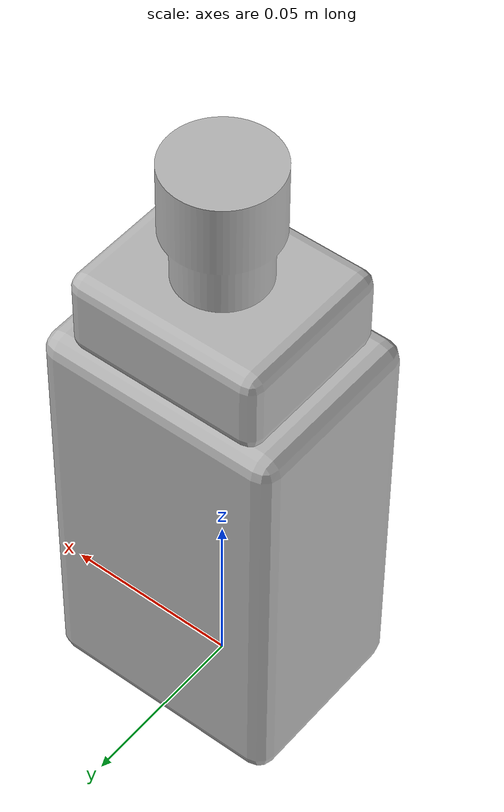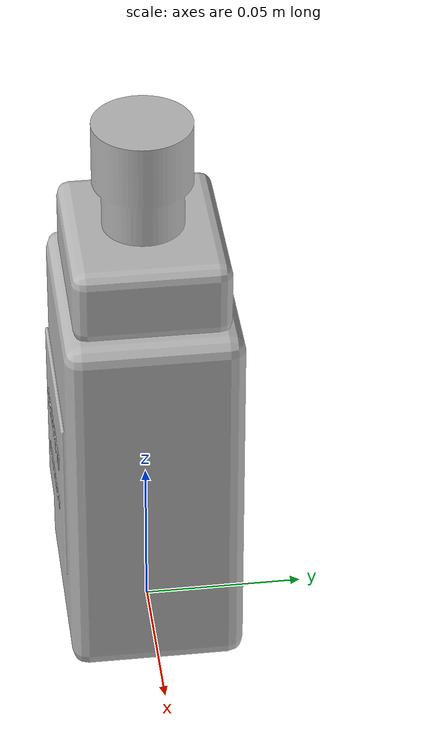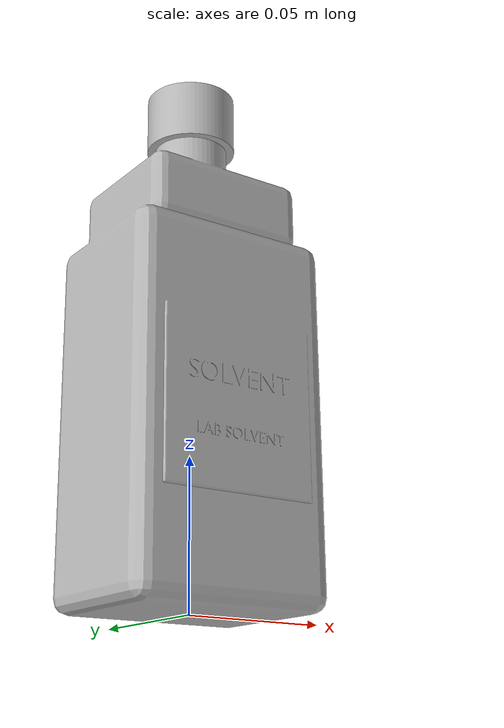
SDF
<?xml version="1.0"?>
<sdf version="1.10">
  <model name="reagent_bottle_solvent">
    <static>false</static>
    <link name="base_link">
      <inertial>
        <pose>0.000000 0.000000 0.089500 0 0 0</pose>
        <mass>0.5200</mass>
        <inertia>
          <ixx>0.00151480</ixx><ixy>0</ixy><ixz>0</ixz>
          <iyy>0.00160078</iyy><iyz>0</iyz>
          <izz>0.00033869</izz>
        </inertia>
      </inertial>
      <collision name="collision">
        <pose>0.000000 0.000000 0.089500 0 0 0</pose>
        <geometry>
          <box><size>0.070000 0.054000 0.179000</size></box>
        </geometry>
        <surface>
          <friction><ode><mu>0.9</mu><mu2>0.9</mu2></ode></friction>
        </surface>
      </collision>
      <visual name="visual">
        <geometry>
          <mesh><uri>model://reagent_bottle_solvent/meshes/reagent_bottle_solvent.obj</uri></mesh>
        </geometry>
      </visual>
    </link>
  </model>
</sdf>
